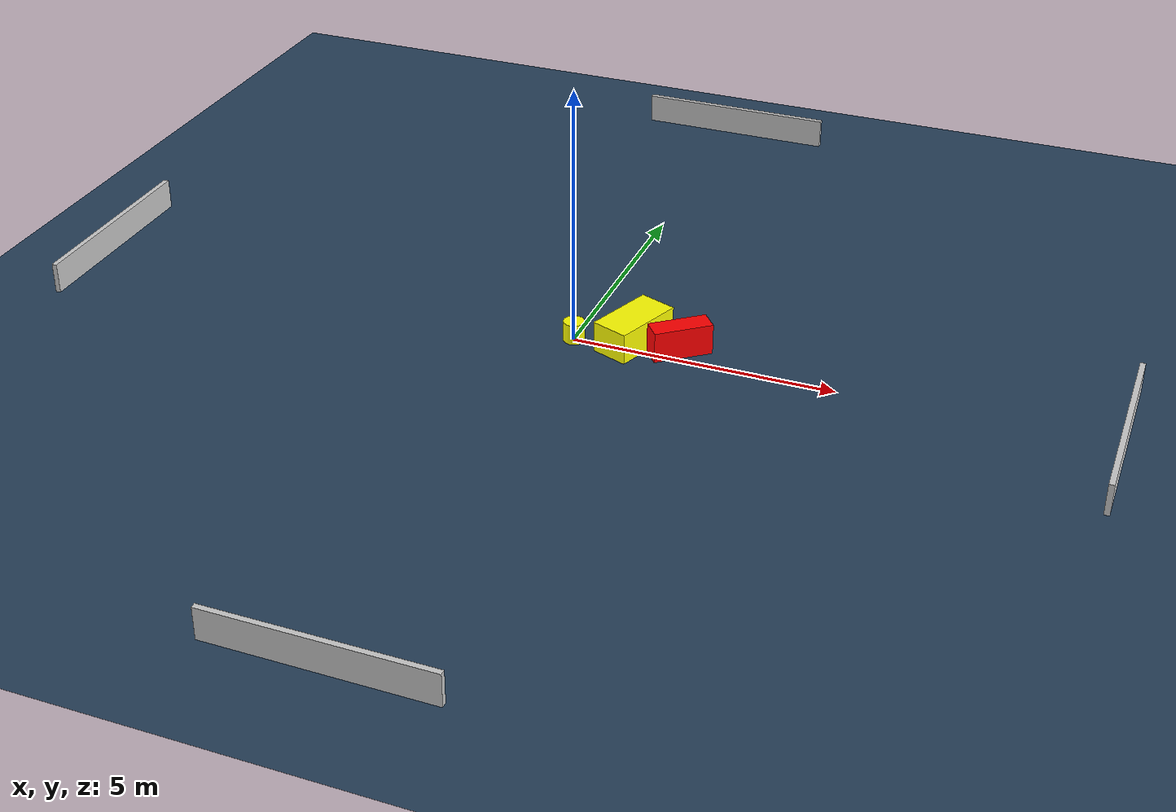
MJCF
<?xml version="1.0" ?>
<mujoco model="generated_environment">
  <option timestep="0.01" integrator="RK4" cone="elliptic"/>
  <default>
    <geom density="1"/>
  </default>
  <asset>
    <texture builtin="gradient" height="3072" name="skybox" rgb1="0.3 0.5 0.7" rgb2="0 0 0" type="skybox" width="512"/>
    <texture builtin="checker" height="300" name="groundplane" rgb1="0.2 0.3 0.4" rgb2="0.1 0.2 0.3" type="2d" width="300"/>
    <material name="groundplane" reflectance="0.2" texrepeat="5 5" texture="groundplane"/>
  </asset>
  <worldbody>
    <light dir="0 0 -1" directional="true" pos="0 0 1.5"/>
    <geom condim="3" friction="0.5 0.005 0.001" material="groundplane" name="floor" pos="0 0 0" size="0 0 0.05" type="plane"/>
    <body name="walls">
      <geom name="wall_1" condim="4" pos="-10.0 0.0 0.3" rgba="0.800000011920929 0.800000011920929 0.800000011920929 1.0" size="0.05 2.0 0.3" type="box"/>
      <geom name="wall_2" condim="4" pos="10.0 0.0 0.3" rgba="0.800000011920929 0.800000011920929 0.800000011920929 1.0" size="0.05 2.0 0.3" type="box"/>
      <geom name="wall_3" condim="4" pos="0.0 -10.0 0.3" rgba="0.800000011920929 0.800000011920929 0.800000011920929 1.0" size="2.0 0.05 0.3" type="box"/>
      <geom name="wall_4" condim="4" pos="0.0 10.0 0.3" rgba="0.800000011920929 0.800000011920929 0.800000011920929 1.0" size="2.0 0.05 0.3" type="box"/>
    </body>
    <body name="robot">
      <joint name="joint_x" type="slide" pos="0 0 0" axis="1 0 0"/>
      <joint name="joint_y" type="slide" pos="0 0 0" axis="0 1 0"/>
      <geom name="robot" type="cylinder" pos="0.0 0.0 0.2" size="0.2 0.2 0.0" mass="5.0" friction="1.0 0.005 0.0001" condim="4" rgba="1.0 1.0 0.0 1.0"/>
    </body>
    <body name="obstacle_1_movable">
      <geom name="obstacle_1_movable" condim="4" pos="1.0699581887519458 0.2930564393724764 0.3" euler="0 0 69.3997116124921" friction="0.0 0.005 0.001" rgba="1.0 1.0 0.0 1.0" size="0.6968109023913934 0.36693068591384576 0.3" type="box" mass="0.1"/>
      <joint type="free"/>
    </body>
    <body name="obstacle_2_static">
      <geom name="obstacle_2_static" condim="4" pos="1.9786566861469372 0.2777570704389585 0.3" euler="0 0 308.6788447764992" friction="0.0 0.005 0.001" rgba="1.0 0.0 0.0 1.0" size="0.20490920588786196 0.5663637250680478 0.3" type="box"/>
    </body>
  </worldbody>
  <actuator>
    <motor name="actuator_x" joint="joint_x" gear="1" ctrlrange="-1 1"/>
    <motor name="actuator_y" joint="joint_y" gear="1" ctrlrange="-1 1"/>
  </actuator>
</mujoco>
